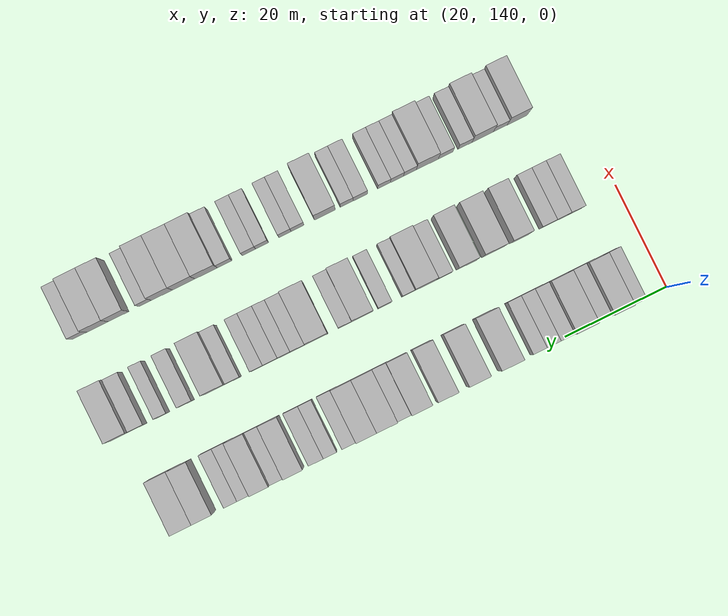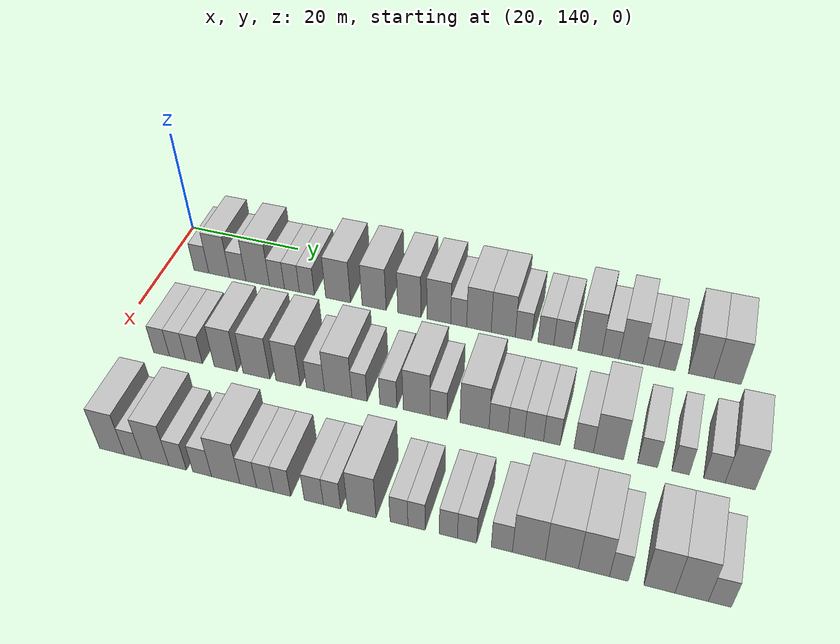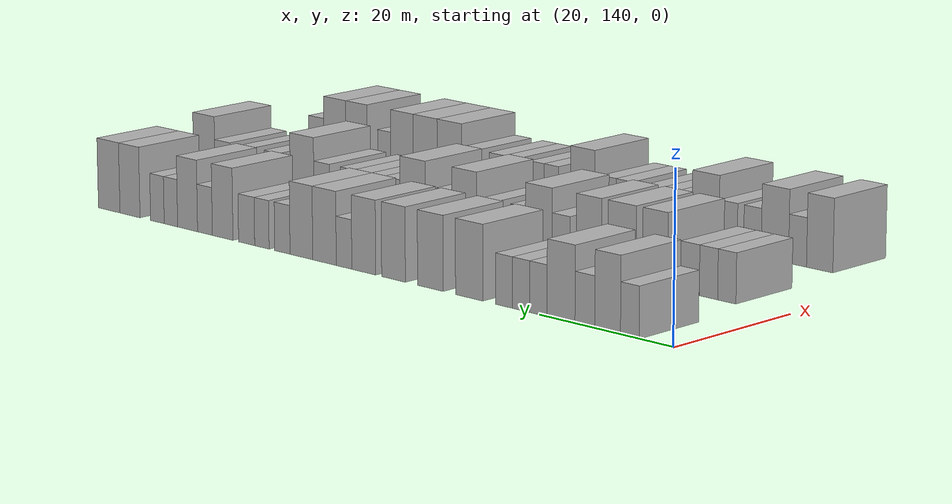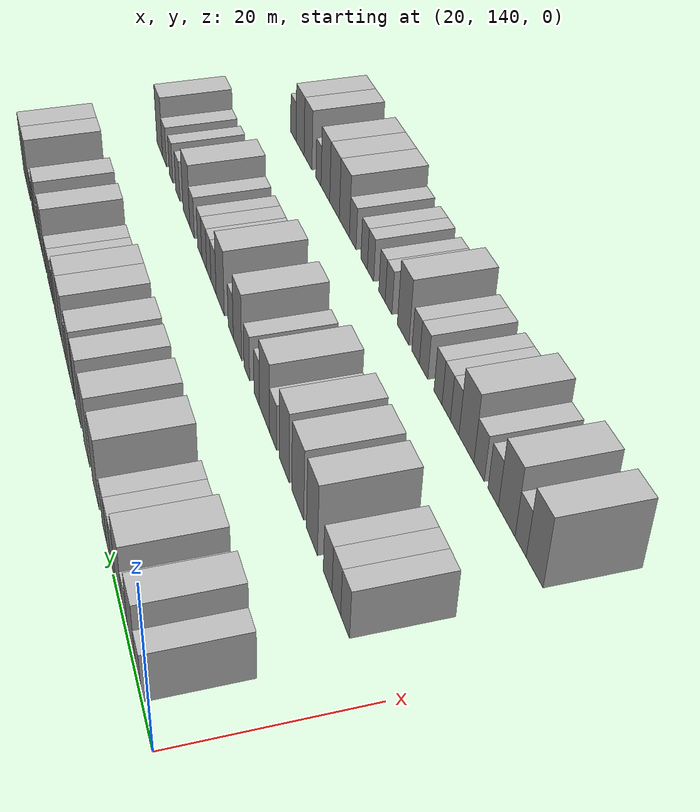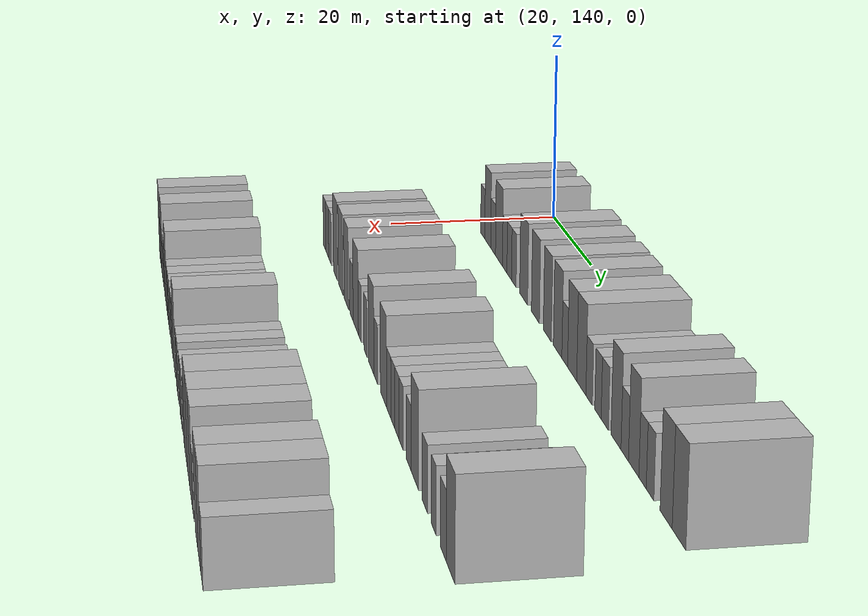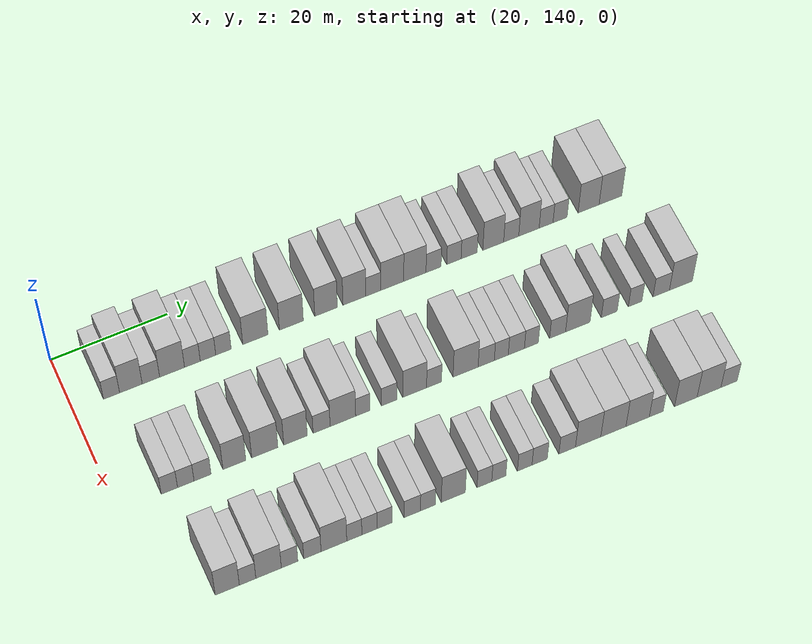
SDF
<sdf version="1.6">
 <world name="default">
  <model name="building_97">
   <static>1</static>
   <pose>25.0000 146.4397 0 0.000000 0.000000 0.000000</pose>
   <link name="link">
    <pose>0 0 3.00 0 0 0</pose>
    <collision name="collision"><geometry><box><size>10.0000 2.7392 6.0000</size></box></geometry></collision>
    <visual name="visual">
     <cast_shadows>0</cast_shadows>
     <geometry><box><size>10.0000 2.7392 6.0000</size></box></geometry>
     <material>
      <script>
       <uri>model://HANNAS_wall/materials/scripts</uri>
       <uri>model://HANNAS_wall/materials/textures</uri>
       <name>vrc/HANNAS_wall</name>
      </script>
     </material>
    </visual>
   </link>
  </model>
  <model name="building_98">
   <static>1</static>
   <pose>25.0000 149.7296 0 0.000000 0.000000 0.000000</pose>
   <link name="link">
    <pose>0 0 4.50 0 0 0</pose>
    <collision name="collision"><geometry><box><size>10.0000 3.8405 9.0000</size></box></geometry></collision>
    <visual name="visual">
     <cast_shadows>0</cast_shadows>
     <geometry><box><size>10.0000 3.8405 9.0000</size></box></geometry>
     <material>
      <script>
       <uri>model://HANNAS_wall/materials/scripts</uri>
       <uri>model://HANNAS_wall/materials/textures</uri>
       <name>vrc/HANNAS_wall</name>
      </script>
     </material>
    </visual>
   </link>
  </model>
  <model name="building_99">
   <static>1</static>
   <pose>25.0000 153.1347 0 0.000000 0.000000 0.000000</pose>
   <link name="link">
    <pose>0 0 3.00 0 0 0</pose>
    <collision name="collision"><geometry><box><size>10.0000 2.9698 6.0000</size></box></geometry></collision>
    <visual name="visual">
     <cast_shadows>0</cast_shadows>
     <geometry><box><size>10.0000 2.9698 6.0000</size></box></geometry>
     <material>
      <script>
       <uri>model://HANNAS_wall/materials/scripts</uri>
       <uri>model://HANNAS_wall/materials/textures</uri>
       <name>vrc/HANNAS_wall</name>
      </script>
     </material>
    </visual>
   </link>
  </model>
  <model name="building_100">
   <static>1</static>
   <pose>25.0000 156.7479 0 0.000000 0.000000 0.000000</pose>
   <link name="link">
    <pose>0 0 4.50 0 0 0</pose>
    <collision name="collision"><geometry><box><size>10.0000 4.2564 9.0000</size></box></geometry></collision>
    <visual name="visual">
     <cast_shadows>0</cast_shadows>
     <geometry><box><size>10.0000 4.2564 9.0000</size></box></geometry>
     <material>
      <script>
       <uri>model://HANNAS_wall/materials/scripts</uri>
       <uri>model://HANNAS_wall/materials/textures</uri>
       <name>vrc/HANNAS_wall</name>
      </script>
     </material>
    </visual>
   </link>
  </model>
  <model name="building_101">
   <static>1</static>
   <pose>25.0000 160.2203 0 0.000000 0.000000 0.000000</pose>
   <link name="link">
    <pose>0 0 3.00 0 0 0</pose>
    <collision name="collision"><geometry><box><size>10.0000 2.6884 6.0000</size></box></geometry></collision>
    <visual name="visual">
     <cast_shadows>0</cast_shadows>
     <geometry><box><size>10.0000 2.6884 6.0000</size></box></geometry>
     <material>
      <script>
       <uri>model://HANNAS_wall/materials/scripts</uri>
       <uri>model://HANNAS_wall/materials/textures</uri>
       <name>vrc/HANNAS_wall</name>
      </script>
     </material>
    </visual>
   </link>
  </model>
  <model name="building_102">
   <static>1</static>
   <pose>25.0000 162.8949 0 0.000000 0.000000 0.000000</pose>
   <link name="link">
    <pose>0 0 3.00 0 0 0</pose>
    <collision name="collision"><geometry><box><size>10.0000 2.6607 6.0000</size></box></geometry></collision>
    <visual name="visual">
     <cast_shadows>0</cast_shadows>
     <geometry><box><size>10.0000 2.6607 6.0000</size></box></geometry>
     <material>
      <script>
       <uri>model://HANNAS_wall/materials/scripts</uri>
       <uri>model://HANNAS_wall/materials/textures</uri>
       <name>vrc/HANNAS_wall</name>
      </script>
     </material>
    </visual>
   </link>
  </model>
  <model name="building_103">
   <static>1</static>
   <pose>25.0000 165.5532 0 0.000000 0.000000 0.000000</pose>
   <link name="link">
    <pose>0 0 3.00 0 0 0</pose>
    <collision name="collision"><geometry><box><size>10.0000 2.6559 6.0000</size></box></geometry></collision>
    <visual name="visual">
     <cast_shadows>0</cast_shadows>
     <geometry><box><size>10.0000 2.6559 6.0000</size></box></geometry>
     <material>
      <script>
       <uri>model://HANNAS_wall/materials/scripts</uri>
       <uri>model://HANNAS_wall/materials/textures</uri>
       <name>vrc/HANNAS_wall</name>
      </script>
     </material>
    </visual>
   </link>
  </model>
  <model name="building_104">
   <static>1</static>
   <pose>25.0000 171.0571 0 0.000000 0.000000 0.000000</pose>
   <link name="link">
    <pose>0 0 4.50 0 0 0</pose>
    <collision name="collision"><geometry><box><size>10.0000 4.3519 9.0000</size></box></geometry></collision>
    <visual name="visual">
     <cast_shadows>0</cast_shadows>
     <geometry><box><size>10.0000 4.3519 9.0000</size></box></geometry>
     <material>
      <script>
       <uri>model://HANNAS_wall/materials/scripts</uri>
       <uri>model://HANNAS_wall/materials/textures</uri>
       <name>vrc/HANNAS_wall</name>
      </script>
     </material>
    </visual>
   </link>
  </model>
  <model name="building_105">
   <static>1</static>
   <pose>25.0000 177.3102 0 0.000000 0.000000 0.000000</pose>
   <link name="link">
    <pose>0 0 4.50 0 0 0</pose>
    <collision name="collision"><geometry><box><size>10.0000 4.1542 9.0000</size></box></geometry></collision>
    <visual name="visual">
     <cast_shadows>0</cast_shadows>
     <geometry><box><size>10.0000 4.1542 9.0000</size></box></geometry>
     <material>
      <script>
       <uri>model://HANNAS_wall/materials/scripts</uri>
       <uri>model://HANNAS_wall/materials/textures</uri>
       <name>vrc/HANNAS_wall</name>
      </script>
     </material>
    </visual>
   </link>
  </model>
  <model name="building_106">
   <static>1</static>
   <pose>25.0000 183.3528 0 0.000000 0.000000 0.000000</pose>
   <link name="link">
    <pose>0 0 4.50 0 0 0</pose>
    <collision name="collision"><geometry><box><size>10.0000 3.9310 9.0000</size></box></geometry></collision>
    <visual name="visual">
     <cast_shadows>0</cast_shadows>
     <geometry><box><size>10.0000 3.9310 9.0000</size></box></geometry>
     <material>
      <script>
       <uri>model://HANNAS_wall/materials/scripts</uri>
       <uri>model://HANNAS_wall/materials/textures</uri>
       <name>vrc/HANNAS_wall</name>
      </script>
     </material>
    </visual>
   </link>
  </model>
  <model name="building_107">
   <static>1</static>
   <pose>25.0000 188.3249 0 0.000000 0.000000 0.000000</pose>
   <link name="link">
    <pose>0 0 4.50 0 0 0</pose>
    <collision name="collision"><geometry><box><size>10.0000 4.0132 9.0000</size></box></geometry></collision>
    <visual name="visual">
     <cast_shadows>0</cast_shadows>
     <geometry><box><size>10.0000 4.0132 9.0000</size></box></geometry>
     <material>
      <script>
       <uri>model://HANNAS_wall/materials/scripts</uri>
       <uri>model://HANNAS_wall/materials/textures</uri>
       <name>vrc/HANNAS_wall</name>
      </script>
     </material>
    </visual>
   </link>
  </model>
  <model name="building_108">
   <static>1</static>
   <pose>25.0000 191.6520 0 0.000000 0.000000 0.000000</pose>
   <link name="link">
    <pose>0 0 3.00 0 0 0</pose>
    <collision name="collision"><geometry><box><size>10.0000 2.6411 6.0000</size></box></geometry></collision>
    <visual name="visual">
     <cast_shadows>0</cast_shadows>
     <geometry><box><size>10.0000 2.6411 6.0000</size></box></geometry>
     <material>
      <script>
       <uri>model://HANNAS_wall/materials/scripts</uri>
       <uri>model://HANNAS_wall/materials/textures</uri>
       <name>vrc/HANNAS_wall</name>
      </script>
     </material>
    </visual>
   </link>
  </model>
  <model name="building_109">
   <static>1</static>
   <pose>25.0000 194.9926 0 0.000000 0.000000 0.000000</pose>
   <link name="link">
    <pose>0 0 4.50 0 0 0</pose>
    <collision name="collision"><geometry><box><size>10.0000 4.0400 9.0000</size></box></geometry></collision>
    <visual name="visual">
     <cast_shadows>0</cast_shadows>
     <geometry><box><size>10.0000 4.0400 9.0000</size></box></geometry>
     <material>
      <script>
       <uri>model://HANNAS_wall/materials/scripts</uri>
       <uri>model://HANNAS_wall/materials/textures</uri>
       <name>vrc/HANNAS_wall</name>
      </script>
     </material>
    </visual>
   </link>
  </model>
  <model name="building_110">
   <static>1</static>
   <pose>25.0000 198.9878 0 0.000000 0.000000 0.000000</pose>
   <link name="link">
    <pose>0 0 4.50 0 0 0</pose>
    <collision name="collision"><geometry><box><size>10.0000 3.9503 9.0000</size></box></geometry></collision>
    <visual name="visual">
     <cast_shadows>0</cast_shadows>
     <geometry><box><size>10.0000 3.9503 9.0000</size></box></geometry>
     <material>
      <script>
       <uri>model://HANNAS_wall/materials/scripts</uri>
       <uri>model://HANNAS_wall/materials/textures</uri>
       <name>vrc/HANNAS_wall</name>
      </script>
     </material>
    </visual>
   </link>
  </model>
  <model name="building_111">
   <static>1</static>
   <pose>25.0000 202.3021 0 0.000000 0.000000 0.000000</pose>
   <link name="link">
    <pose>0 0 3.00 0 0 0</pose>
    <collision name="collision"><geometry><box><size>10.0000 2.6783 6.0000</size></box></geometry></collision>
    <visual name="visual">
     <cast_shadows>0</cast_shadows>
     <geometry><box><size>10.0000 2.6783 6.0000</size></box></geometry>
     <material>
      <script>
       <uri>model://HANNAS_wall/materials/scripts</uri>
       <uri>model://HANNAS_wall/materials/textures</uri>
       <name>vrc/HANNAS_wall</name>
      </script>
     </material>
    </visual>
   </link>
  </model>
  <model name="building_112">
   <static>1</static>
   <pose>25.0000 205.9230 0 0.000000 0.000000 0.000000</pose>
   <link name="link">
    <pose>0 0 3.00 0 0 0</pose>
    <collision name="collision"><geometry><box><size>10.0000 2.5635 6.0000</size></box></geometry></collision>
    <visual name="visual">
     <cast_shadows>0</cast_shadows>
     <geometry><box><size>10.0000 2.5635 6.0000</size></box></geometry>
     <material>
      <script>
       <uri>model://HANNAS_wall/materials/scripts</uri>
       <uri>model://HANNAS_wall/materials/textures</uri>
       <name>vrc/HANNAS_wall</name>
      </script>
     </material>
    </visual>
   </link>
  </model>
  <model name="building_113">
   <static>1</static>
   <pose>25.0000 208.6433 0 0.000000 0.000000 0.000000</pose>
   <link name="link">
    <pose>0 0 3.00 0 0 0</pose>
    <collision name="collision"><geometry><box><size>10.0000 2.8770 6.0000</size></box></geometry></collision>
    <visual name="visual">
     <cast_shadows>0</cast_shadows>
     <geometry><box><size>10.0000 2.8770 6.0000</size></box></geometry>
     <material>
      <script>
       <uri>model://HANNAS_wall/materials/scripts</uri>
       <uri>model://HANNAS_wall/materials/textures</uri>
       <name>vrc/HANNAS_wall</name>
      </script>
     </material>
    </visual>
   </link>
  </model>
  <model name="building_114">
   <static>1</static>
   <pose>25.0000 212.9527 0 0.000000 0.000000 0.000000</pose>
   <link name="link">
    <pose>0 0 4.50 0 0 0</pose>
    <collision name="collision"><geometry><box><size>10.0000 3.7418 9.0000</size></box></geometry></collision>
    <visual name="visual">
     <cast_shadows>0</cast_shadows>
     <geometry><box><size>10.0000 3.7418 9.0000</size></box></geometry>
     <material>
      <script>
       <uri>model://HANNAS_wall/materials/scripts</uri>
       <uri>model://HANNAS_wall/materials/textures</uri>
       <name>vrc/HANNAS_wall</name>
      </script>
     </material>
    </visual>
   </link>
  </model>
  <model name="building_115">
   <static>1</static>
   <pose>25.0000 216.1789 0 0.000000 0.000000 0.000000</pose>
   <link name="link">
    <pose>0 0 3.00 0 0 0</pose>
    <collision name="collision"><geometry><box><size>10.0000 2.7105 6.0000</size></box></geometry></collision>
    <visual name="visual">
     <cast_shadows>0</cast_shadows>
     <geometry><box><size>10.0000 2.7105 6.0000</size></box></geometry>
     <material>
      <script>
       <uri>model://HANNAS_wall/materials/scripts</uri>
       <uri>model://HANNAS_wall/materials/textures</uri>
       <name>vrc/HANNAS_wall</name>
      </script>
     </material>
    </visual>
   </link>
  </model>
  <model name="building_116">
   <static>1</static>
   <pose>25.0000 219.3775 0 0.000000 0.000000 0.000000</pose>
   <link name="link">
    <pose>0 0 4.50 0 0 0</pose>
    <collision name="collision"><geometry><box><size>10.0000 3.6869 9.0000</size></box></geometry></collision>
    <visual name="visual">
     <cast_shadows>0</cast_shadows>
     <geometry><box><size>10.0000 3.6869 9.0000</size></box></geometry>
     <material>
      <script>
       <uri>model://HANNAS_wall/materials/scripts</uri>
       <uri>model://HANNAS_wall/materials/textures</uri>
       <name>vrc/HANNAS_wall</name>
      </script>
     </material>
    </visual>
   </link>
  </model>
  <model name="building_117">
   <static>1</static>
   <pose>25.0000 222.4710 0 0.000000 0.000000 0.000000</pose>
   <link name="link">
    <pose>0 0 3.00 0 0 0</pose>
    <collision name="collision"><geometry><box><size>10.0000 2.5001 6.0000</size></box></geometry></collision>
    <visual name="visual">
     <cast_shadows>0</cast_shadows>
     <geometry><box><size>10.0000 2.5001 6.0000</size></box></geometry>
     <material>
      <script>
       <uri>model://HANNAS_wall/materials/scripts</uri>
       <uri>model://HANNAS_wall/materials/textures</uri>
       <name>vrc/HANNAS_wall</name>
      </script>
     </material>
    </visual>
   </link>
  </model>
  <model name="building_118">
   <static>1</static>
   <pose>25.0000 224.9990 0 0.000000 0.000000 0.000000</pose>
   <link name="link">
    <pose>0 0 3.00 0 0 0</pose>
    <collision name="collision"><geometry><box><size>10.0000 2.5560 6.0000</size></box></geometry></collision>
    <visual name="visual">
     <cast_shadows>0</cast_shadows>
     <geometry><box><size>10.0000 2.5560 6.0000</size></box></geometry>
     <material>
      <script>
       <uri>model://HANNAS_wall/materials/scripts</uri>
       <uri>model://HANNAS_wall/materials/textures</uri>
       <name>vrc/HANNAS_wall</name>
      </script>
     </material>
    </visual>
   </link>
  </model>
  <model name="building_119">
   <static>1</static>
   <pose>25.0000 230.1893 0 0.000000 0.000000 0.000000</pose>
   <link name="link">
    <pose>0 0 4.50 0 0 0</pose>
    <collision name="collision"><geometry><box><size>10.0000 3.8244 9.0000</size></box></geometry></collision>
    <visual name="visual">
     <cast_shadows>0</cast_shadows>
     <geometry><box><size>10.0000 3.8244 9.0000</size></box></geometry>
     <material>
      <script>
       <uri>model://HANNAS_wall/materials/scripts</uri>
       <uri>model://HANNAS_wall/materials/textures</uri>
       <name>vrc/HANNAS_wall</name>
      </script>
     </material>
    </visual>
   </link>
  </model>
  <model name="building_120">
   <static>1</static>
   <pose>25.0000 234.1698 0 0.000000 0.000000 0.000000</pose>
   <link name="link">
    <pose>0 0 4.50 0 0 0</pose>
    <collision name="collision"><geometry><box><size>10.0000 4.1366 9.0000</size></box></geometry></collision>
    <visual name="visual">
     <cast_shadows>0</cast_shadows>
     <geometry><box><size>10.0000 4.1366 9.0000</size></box></geometry>
     <material>
      <script>
       <uri>model://HANNAS_wall/materials/scripts</uri>
       <uri>model://HANNAS_wall/materials/textures</uri>
       <name>vrc/HANNAS_wall</name>
      </script>
     </material>
    </visual>
   </link>
  </model>
  <model name="building_218">
   <static>1</static>
   <pose>44.0000 148.6196 0 0.000000 0.000000 0.000000</pose>
   <link name="link">
    <pose>0 0 3.00 0 0 0</pose>
    <collision name="collision"><geometry><box><size>10.0000 2.7322 6.0000</size></box></geometry></collision>
    <visual name="visual">
     <cast_shadows>0</cast_shadows>
     <geometry><box><size>10.0000 2.7322 6.0000</size></box></geometry>
     <material>
      <script>
       <uri>model://HANNAS_wall/materials/scripts</uri>
       <uri>model://HANNAS_wall/materials/textures</uri>
       <name>vrc/HANNAS_wall</name>
      </script>
     </material>
    </visual>
   </link>
  </model>
  <model name="building_219">
   <static>1</static>
   <pose>44.0000 151.3660 0 0.000000 0.000000 0.000000</pose>
   <link name="link">
    <pose>0 0 3.00 0 0 0</pose>
    <collision name="collision"><geometry><box><size>10.0000 2.7606 6.0000</size></box></geometry></collision>
    <visual name="visual">
     <cast_shadows>0</cast_shadows>
     <geometry><box><size>10.0000 2.7606 6.0000</size></box></geometry>
     <material>
      <script>
       <uri>model://HANNAS_wall/materials/scripts</uri>
       <uri>model://HANNAS_wall/materials/textures</uri>
       <name>vrc/HANNAS_wall</name>
      </script>
     </material>
    </visual>
   </link>
  </model>
  <model name="building_220">
   <static>1</static>
   <pose>44.0000 154.1732 0 0.000000 0.000000 0.000000</pose>
   <link name="link">
    <pose>0 0 3.00 0 0 0</pose>
    <collision name="collision"><geometry><box><size>10.0000 2.8539 6.0000</size></box></geometry></collision>
    <visual name="visual">
     <cast_shadows>0</cast_shadows>
     <geometry><box><size>10.0000 2.8539 6.0000</size></box></geometry>
     <material>
      <script>
       <uri>model://HANNAS_wall/materials/scripts</uri>
       <uri>model://HANNAS_wall/materials/textures</uri>
       <name>vrc/HANNAS_wall</name>
      </script>
     </material>
    </visual>
   </link>
  </model>
  <model name="building_221">
   <static>1</static>
   <pose>44.0000 159.5273 0 0.000000 0.000000 0.000000</pose>
   <link name="link">
    <pose>0 0 4.50 0 0 0</pose>
    <collision name="collision"><geometry><box><size>10.0000 3.8543 9.0000</size></box></geometry></collision>
    <visual name="visual">
     <cast_shadows>0</cast_shadows>
     <geometry><box><size>10.0000 3.8543 9.0000</size></box></geometry>
     <material>
      <script>
       <uri>model://HANNAS_wall/materials/scripts</uri>
       <uri>model://HANNAS_wall/materials/textures</uri>
       <name>vrc/HANNAS_wall</name>
      </script>
     </material>
    </visual>
   </link>
  </model>
  <model name="building_222">
   <static>1</static>
   <pose>44.0000 164.6703 0 0.000000 0.000000 0.000000</pose>
   <link name="link">
    <pose>0 0 4.50 0 0 0</pose>
    <collision name="collision"><geometry><box><size>10.0000 4.4319 9.0000</size></box></geometry></collision>
    <visual name="visual">
     <cast_shadows>0</cast_shadows>
     <geometry><box><size>10.0000 4.4319 9.0000</size></box></geometry>
     <material>
      <script>
       <uri>model://HANNAS_wall/materials/scripts</uri>
       <uri>model://HANNAS_wall/materials/textures</uri>
       <name>vrc/HANNAS_wall</name>
      </script>
     </material>
    </visual>
   </link>
  </model>
  <model name="building_223">
   <static>1</static>
   <pose>44.0000 169.8847 0 0.000000 0.000000 0.000000</pose>
   <link name="link">
    <pose>0 0 4.50 0 0 0</pose>
    <collision name="collision"><geometry><box><size>10.0000 3.9969 9.0000</size></box></geometry></collision>
    <visual name="visual">
     <cast_shadows>0</cast_shadows>
     <geometry><box><size>10.0000 3.9969 9.0000</size></box></geometry>
     <material>
      <script>
       <uri>model://HANNAS_wall/materials/scripts</uri>
       <uri>model://HANNAS_wall/materials/textures</uri>
       <name>vrc/HANNAS_wall</name>
      </script>
     </material>
    </visual>
   </link>
  </model>
  <model name="building_224">
   <static>1</static>
   <pose>44.0000 174.3348 0 0.000000 0.000000 0.000000</pose>
   <link name="link">
    <pose>0 0 3.00 0 0 0</pose>
    <collision name="collision"><geometry><box><size>10.0000 2.9032 6.0000</size></box></geometry></collision>
    <visual name="visual">
     <cast_shadows>0</cast_shadows>
     <geometry><box><size>10.0000 2.9032 6.0000</size></box></geometry>
     <material>
      <script>
       <uri>model://HANNAS_wall/materials/scripts</uri>
       <uri>model://HANNAS_wall/materials/textures</uri>
       <name>vrc/HANNAS_wall</name>
      </script>
     </material>
    </visual>
   </link>
  </model>
  <model name="building_225">
   <static>1</static>
   <pose>44.0000 177.9790 0 0.000000 0.000000 0.000000</pose>
   <link name="link">
    <pose>0 0 4.50 0 0 0</pose>
    <collision name="collision"><geometry><box><size>10.0000 4.3853 9.0000</size></box></geometry></collision>
    <visual name="visual">
     <cast_shadows>0</cast_shadows>
     <geometry><box><size>10.0000 4.3853 9.0000</size></box></geometry>
     <material>
      <script>
       <uri>model://HANNAS_wall/materials/scripts</uri>
       <uri>model://HANNAS_wall/materials/textures</uri>
       <name>vrc/HANNAS_wall</name>
      </script>
     </material>
    </visual>
   </link>
  </model>
  <model name="building_226">
   <static>1</static>
   <pose>44.0000 181.3845 0 0.000000 0.000000 0.000000</pose>
   <link name="link">
    <pose>0 0 3.00 0 0 0</pose>
    <collision name="collision"><geometry><box><size>10.0000 2.4257 6.0000</size></box></geometry></collision>
    <visual name="visual">
     <cast_shadows>0</cast_shadows>
     <geometry><box><size>10.0000 2.4257 6.0000</size></box></geometry>
     <material>
      <script>
       <uri>model://HANNAS_wall/materials/scripts</uri>
       <uri>model://HANNAS_wall/materials/textures</uri>
       <name>vrc/HANNAS_wall</name>
      </script>
     </material>
    </visual>
   </link>
  </model>
  <model name="building_227">
   <static>1</static>
   <pose>44.0000 185.9343 0 0.000000 0.000000 0.000000</pose>
   <link name="link">
    <pose>0 0 3.00 0 0 0</pose>
    <collision name="collision"><geometry><box><size>10.0000 2.6739 6.0000</size></box></geometry></collision>
    <visual name="visual">
     <cast_shadows>0</cast_shadows>
     <geometry><box><size>10.0000 2.6739 6.0000</size></box></geometry>
     <material>
      <script>
       <uri>model://HANNAS_wall/materials/scripts</uri>
       <uri>model://HANNAS_wall/materials/textures</uri>
       <name>vrc/HANNAS_wall</name>
      </script>
     </material>
    </visual>
   </link>
  </model>
  <model name="building_228">
   <static>1</static>
   <pose>44.0000 190.3414 0 0.000000 0.000000 0.000000</pose>
   <link name="link">
    <pose>0 0 4.50 0 0 0</pose>
    <collision name="collision"><geometry><box><size>10.0000 4.1401 9.0000</size></box></geometry></collision>
    <visual name="visual">
     <cast_shadows>0</cast_shadows>
     <geometry><box><size>10.0000 4.1401 9.0000</size></box></geometry>
     <material>
      <script>
       <uri>model://HANNAS_wall/materials/scripts</uri>
       <uri>model://HANNAS_wall/materials/textures</uri>
       <name>vrc/HANNAS_wall</name>
      </script>
     </material>
    </visual>
   </link>
  </model>
  <model name="building_229">
   <static>1</static>
   <pose>44.0000 193.7143 0 0.000000 0.000000 0.000000</pose>
   <link name="link">
    <pose>0 0 3.00 0 0 0</pose>
    <collision name="collision"><geometry><box><size>10.0000 2.6059 6.0000</size></box></geometry></collision>
    <visual name="visual">
     <cast_shadows>0</cast_shadows>
     <geometry><box><size>10.0000 2.6059 6.0000</size></box></geometry>
     <material>
      <script>
       <uri>model://HANNAS_wall/materials/scripts</uri>
       <uri>model://HANNAS_wall/materials/textures</uri>
       <name>vrc/HANNAS_wall</name>
      </script>
     </material>
    </visual>
   </link>
  </model>
  <model name="building_230">
   <static>1</static>
   <pose>44.0000 199.2094 0 0.000000 0.000000 0.000000</pose>
   <link name="link">
    <pose>0 0 4.50 0 0 0</pose>
    <collision name="collision"><geometry><box><size>10.0000 4.3842 9.0000</size></box></geometry></collision>
    <visual name="visual">
     <cast_shadows>0</cast_shadows>
     <geometry><box><size>10.0000 4.3842 9.0000</size></box></geometry>
     <material>
      <script>
       <uri>model://HANNAS_wall/materials/scripts</uri>
       <uri>model://HANNAS_wall/materials/textures</uri>
       <name>vrc/HANNAS_wall</name>
      </script>
     </material>
    </visual>
   </link>
  </model>
  <model name="building_231">
   <static>1</static>
   <pose>44.0000 202.8194 0 0.000000 0.000000 0.000000</pose>
   <link name="link">
    <pose>0 0 3.00 0 0 0</pose>
    <collision name="collision"><geometry><box><size>10.0000 2.8358 6.0000</size></box></geometry></collision>
    <visual name="visual">
     <cast_shadows>0</cast_shadows>
     <geometry><box><size>10.0000 2.8358 6.0000</size></box></geometry>
     <material>
      <script>
       <uri>model://HANNAS_wall/materials/scripts</uri>
       <uri>model://HANNAS_wall/materials/textures</uri>
       <name>vrc/HANNAS_wall</name>
      </script>
     </material>
    </visual>
   </link>
  </model>
  <model name="building_232">
   <static>1</static>
   <pose>44.0000 205.4664 0 0.000000 0.000000 0.000000</pose>
   <link name="link">
    <pose>0 0 3.00 0 0 0</pose>
    <collision name="collision"><geometry><box><size>10.0000 2.4582 6.0000</size></box></geometry></collision>
    <visual name="visual">
     <cast_shadows>0</cast_shadows>
     <geometry><box><size>10.0000 2.4582 6.0000</size></box></geometry>
     <material>
      <script>
       <uri>model://HANNAS_wall/materials/scripts</uri>
       <uri>model://HANNAS_wall/materials/textures</uri>
       <name>vrc/HANNAS_wall</name>
      </script>
     </material>
    </visual>
   </link>
  </model>
  <model name="building_233">
   <static>1</static>
   <pose>44.0000 208.1112 0 0.000000 0.000000 0.000000</pose>
   <link name="link">
    <pose>0 0 3.00 0 0 0</pose>
    <collision name="collision"><geometry><box><size>10.0000 2.8314 6.0000</size></box></geometry></collision>
    <visual name="visual">
     <cast_shadows>0</cast_shadows>
     <geometry><box><size>10.0000 2.8314 6.0000</size></box></geometry>
     <material>
      <script>
       <uri>model://HANNAS_wall/materials/scripts</uri>
       <uri>model://HANNAS_wall/materials/textures</uri>
       <name>vrc/HANNAS_wall</name>
      </script>
     </material>
    </visual>
   </link>
  </model>
  <model name="building_234">
   <static>1</static>
   <pose>44.0000 210.7531 0 0.000000 0.000000 0.000000</pose>
   <link name="link">
    <pose>0 0 3.00 0 0 0</pose>
    <collision name="collision"><geometry><box><size>10.0000 2.4525 6.0000</size></box></geometry></collision>
    <visual name="visual">
     <cast_shadows>0</cast_shadows>
     <geometry><box><size>10.0000 2.4525 6.0000</size></box></geometry>
     <material>
      <script>
       <uri>model://HANNAS_wall/materials/scripts</uri>
       <uri>model://HANNAS_wall/materials/textures</uri>
       <name>vrc/HANNAS_wall</name>
      </script>
     </material>
    </visual>
   </link>
  </model>
  <model name="building_235">
   <static>1</static>
   <pose>44.0000 215.3943 0 0.000000 0.000000 0.000000</pose>
   <link name="link">
    <pose>0 0 3.00 0 0 0</pose>
    <collision name="collision"><geometry><box><size>10.0000 2.8300 6.0000</size></box></geometry></collision>
    <visual name="visual">
     <cast_shadows>0</cast_shadows>
     <geometry><box><size>10.0000 2.8300 6.0000</size></box></geometry>
     <material>
      <script>
       <uri>model://HANNAS_wall/materials/scripts</uri>
       <uri>model://HANNAS_wall/materials/textures</uri>
       <name>vrc/HANNAS_wall</name>
      </script>
     </material>
    </visual>
   </link>
  </model>
  <model name="building_236">
   <static>1</static>
   <pose>44.0000 218.9858 0 0.000000 0.000000 0.000000</pose>
   <link name="link">
    <pose>0 0 4.50 0 0 0</pose>
    <collision name="collision"><geometry><box><size>10.0000 4.3530 9.0000</size></box></geometry></collision>
    <visual name="visual">
     <cast_shadows>0</cast_shadows>
     <geometry><box><size>10.0000 4.3530 9.0000</size></box></geometry>
     <material>
      <script>
       <uri>model://HANNAS_wall/materials/scripts</uri>
       <uri>model://HANNAS_wall/materials/textures</uri>
       <name>vrc/HANNAS_wall</name>
      </script>
     </material>
    </visual>
   </link>
  </model>
  <model name="building_237">
   <static>1</static>
   <pose>44.0000 224.5813 0 0.000000 0.000000 0.000000</pose>
   <link name="link">
    <pose>0 0 3.00 0 0 0</pose>
    <collision name="collision"><geometry><box><size>10.0000 2.8380 6.0000</size></box></geometry></collision>
    <visual name="visual">
     <cast_shadows>0</cast_shadows>
     <geometry><box><size>10.0000 2.8380 6.0000</size></box></geometry>
     <material>
      <script>
       <uri>model://HANNAS_wall/materials/scripts</uri>
       <uri>model://HANNAS_wall/materials/textures</uri>
       <name>vrc/HANNAS_wall</name>
      </script>
     </material>
    </visual>
   </link>
  </model>
  <model name="building_238">
   <static>1</static>
   <pose>44.0000 229.2187 0 0.000000 0.000000 0.000000</pose>
   <link name="link">
    <pose>0 0 3.00 0 0 0</pose>
    <collision name="collision"><geometry><box><size>10.0000 2.4369 6.0000</size></box></geometry></collision>
    <visual name="visual">
     <cast_shadows>0</cast_shadows>
     <geometry><box><size>10.0000 2.4369 6.0000</size></box></geometry>
     <material>
      <script>
       <uri>model://HANNAS_wall/materials/scripts</uri>
       <uri>model://HANNAS_wall/materials/textures</uri>
       <name>vrc/HANNAS_wall</name>
      </script>
     </material>
    </visual>
   </link>
  </model>
  <model name="building_239">
   <static>1</static>
   <pose>44.0000 233.9133 0 0.000000 0.000000 0.000000</pose>
   <link name="link">
    <pose>0 0 3.00 0 0 0</pose>
    <collision name="collision"><geometry><box><size>10.0000 2.9522 6.0000</size></box></geometry></collision>
    <visual name="visual">
     <cast_shadows>0</cast_shadows>
     <geometry><box><size>10.0000 2.9522 6.0000</size></box></geometry>
     <material>
      <script>
       <uri>model://HANNAS_wall/materials/scripts</uri>
       <uri>model://HANNAS_wall/materials/textures</uri>
       <name>vrc/HANNAS_wall</name>
      </script>
     </material>
    </visual>
   </link>
  </model>
  <model name="building_240">
   <static>1</static>
   <pose>44.0000 237.4604 0 0.000000 0.000000 0.000000</pose>
   <link name="link">
    <pose>0 0 4.50 0 0 0</pose>
    <collision name="collision"><geometry><box><size>10.0000 4.1422 9.0000</size></box></geometry></collision>
    <visual name="visual">
     <cast_shadows>0</cast_shadows>
     <geometry><box><size>10.0000 4.1422 9.0000</size></box></geometry>
     <material>
      <script>
       <uri>model://HANNAS_wall/materials/scripts</uri>
       <uri>model://HANNAS_wall/materials/textures</uri>
       <name>vrc/HANNAS_wall</name>
      </script>
     </material>
    </visual>
   </link>
  </model>
  <model name="building_334">
   <static>1</static>
   <pose>63.0000 150.4438 0 0.000000 0.000000 0.000000</pose>
   <link name="link">
    <pose>0 0 4.50 0 0 0</pose>
    <collision name="collision"><geometry><box><size>10.0000 3.9786 9.0000</size></box></geometry></collision>
    <visual name="visual">
     <cast_shadows>0</cast_shadows>
     <geometry><box><size>10.0000 3.9786 9.0000</size></box></geometry>
     <material>
      <script>
       <uri>model://HANNAS_wall/materials/scripts</uri>
       <uri>model://HANNAS_wall/materials/textures</uri>
       <name>vrc/HANNAS_wall</name>
      </script>
     </material>
    </visual>
   </link>
  </model>
  <model name="building_335">
   <static>1</static>
   <pose>63.0000 153.7990 0 0.000000 0.000000 0.000000</pose>
   <link name="link">
    <pose>0 0 3.00 0 0 0</pose>
    <collision name="collision"><geometry><box><size>10.0000 2.7318 6.0000</size></box></geometry></collision>
    <visual name="visual">
     <cast_shadows>0</cast_shadows>
     <geometry><box><size>10.0000 2.7318 6.0000</size></box></geometry>
     <material>
      <script>
       <uri>model://HANNAS_wall/materials/scripts</uri>
       <uri>model://HANNAS_wall/materials/textures</uri>
       <name>vrc/HANNAS_wall</name>
      </script>
     </material>
    </visual>
   </link>
  </model>
  <model name="building_336">
   <static>1</static>
   <pose>63.0000 157.2756 0 0.000000 0.000000 0.000000</pose>
   <link name="link">
    <pose>0 0 4.50 0 0 0</pose>
    <collision name="collision"><geometry><box><size>10.0000 4.2215 9.0000</size></box></geometry></collision>
    <visual name="visual">
     <cast_shadows>0</cast_shadows>
     <geometry><box><size>10.0000 4.2215 9.0000</size></box></geometry>
     <material>
      <script>
       <uri>model://HANNAS_wall/materials/scripts</uri>
       <uri>model://HANNAS_wall/materials/textures</uri>
       <name>vrc/HANNAS_wall</name>
      </script>
     </material>
    </visual>
   </link>
  </model>
  <model name="building_337">
   <static>1</static>
   <pose>63.0000 160.7575 0 0.000000 0.000000 0.000000</pose>
   <link name="link">
    <pose>0 0 3.00 0 0 0</pose>
    <collision name="collision"><geometry><box><size>10.0000 2.7422 6.0000</size></box></geometry></collision>
    <visual name="visual">
     <cast_shadows>0</cast_shadows>
     <geometry><box><size>10.0000 2.7422 6.0000</size></box></geometry>
     <material>
      <script>
       <uri>model://HANNAS_wall/materials/scripts</uri>
       <uri>model://HANNAS_wall/materials/textures</uri>
       <name>vrc/HANNAS_wall</name>
      </script>
     </material>
    </visual>
   </link>
  </model>
  <model name="building_338">
   <static>1</static>
   <pose>63.0000 164.5646 0 0.000000 0.000000 0.000000</pose>
   <link name="link">
    <pose>0 0 3.00 0 0 0</pose>
    <collision name="collision"><geometry><box><size>10.0000 2.8721 6.0000</size></box></geometry></collision>
    <visual name="visual">
     <cast_shadows>0</cast_shadows>
     <geometry><box><size>10.0000 2.8721 6.0000</size></box></geometry>
     <material>
      <script>
       <uri>model://HANNAS_wall/materials/scripts</uri>
       <uri>model://HANNAS_wall/materials/textures</uri>
       <name>vrc/HANNAS_wall</name>
      </script>
     </material>
    </visual>
   </link>
  </model>
  <model name="building_339">
   <static>1</static>
   <pose>63.0000 168.1532 0 0.000000 0.000000 0.000000</pose>
   <link name="link">
    <pose>0 0 4.50 0 0 0</pose>
    <collision name="collision"><geometry><box><size>10.0000 4.3051 9.0000</size></box></geometry></collision>
    <visual name="visual">
     <cast_shadows>0</cast_shadows>
     <geometry><box><size>10.0000 4.3051 9.0000</size></box></geometry>
     <material>
      <script>
       <uri>model://HANNAS_wall/materials/scripts</uri>
       <uri>model://HANNAS_wall/materials/textures</uri>
       <name>vrc/HANNAS_wall</name>
      </script>
     </material>
    </visual>
   </link>
  </model>
  <model name="building_340">
   <static>1</static>
   <pose>63.0000 171.5740 0 0.000000 0.000000 0.000000</pose>
   <link name="link">
    <pose>0 0 3.00 0 0 0</pose>
    <collision name="collision"><geometry><box><size>10.0000 2.5365 6.0000</size></box></geometry></collision>
    <visual name="visual">
     <cast_shadows>0</cast_shadows>
     <geometry><box><size>10.0000 2.5365 6.0000</size></box></geometry>
     <material>
      <script>
       <uri>model://HANNAS_wall/materials/scripts</uri>
       <uri>model://HANNAS_wall/materials/textures</uri>
       <name>vrc/HANNAS_wall</name>
      </script>
     </material>
    </visual>
   </link>
  </model>
  <model name="building_341">
   <static>1</static>
   <pose>63.0000 174.1327 0 0.000000 0.000000 0.000000</pose>
   <link name="link">
    <pose>0 0 3.00 0 0 0</pose>
    <collision name="collision"><geometry><box><size>10.0000 2.5808 6.0000</size></box></geometry></collision>
    <visual name="visual">
     <cast_shadows>0</cast_shadows>
     <geometry><box><size>10.0000 2.5808 6.0000</size></box></geometry>
     <material>
      <script>
       <uri>model://HANNAS_wall/materials/scripts</uri>
       <uri>model://HANNAS_wall/materials/textures</uri>
       <name>vrc/HANNAS_wall</name>
      </script>
     </material>
    </visual>
   </link>
  </model>
  <model name="building_342">
   <static>1</static>
   <pose>63.0000 176.6756 0 0.000000 0.000000 0.000000</pose>
   <link name="link">
    <pose>0 0 3.00 0 0 0</pose>
    <collision name="collision"><geometry><box><size>10.0000 2.5051 6.0000</size></box></geometry></collision>
    <visual name="visual">
     <cast_shadows>0</cast_shadows>
     <geometry><box><size>10.0000 2.5051 6.0000</size></box></geometry>
     <material>
      <script>
       <uri>model://HANNAS_wall/materials/scripts</uri>
       <uri>model://HANNAS_wall/materials/textures</uri>
       <name>vrc/HANNAS_wall</name>
      </script>
     </material>
    </visual>
   </link>
  </model>
  <model name="building_343">
   <static>1</static>
   <pose>63.0000 181.3301 0 0.000000 0.000000 0.000000</pose>
   <link name="link">
    <pose>0 0 3.00 0 0 0</pose>
    <collision name="collision"><geometry><box><size>10.0000 2.8038 6.0000</size></box></geometry></collision>
    <visual name="visual">
     <cast_shadows>0</cast_shadows>
     <geometry><box><size>10.0000 2.8038 6.0000</size></box></geometry>
     <material>
      <script>
       <uri>model://HANNAS_wall/materials/scripts</uri>
       <uri>model://HANNAS_wall/materials/textures</uri>
       <name>vrc/HANNAS_wall</name>
      </script>
     </material>
    </visual>
   </link>
  </model>
  <model name="building_344">
   <static>1</static>
   <pose>63.0000 183.9959 0 0.000000 0.000000 0.000000</pose>
   <link name="link">
    <pose>0 0 3.00 0 0 0</pose>
    <collision name="collision"><geometry><box><size>10.0000 2.5277 6.0000</size></box></geometry></collision>
    <visual name="visual">
     <cast_shadows>0</cast_shadows>
     <geometry><box><size>10.0000 2.5277 6.0000</size></box></geometry>
     <material>
      <script>
       <uri>model://HANNAS_wall/materials/scripts</uri>
       <uri>model://HANNAS_wall/materials/textures</uri>
       <name>vrc/HANNAS_wall</name>
      </script>
     </material>
    </visual>
   </link>
  </model>
  <model name="building_345">
   <static>1</static>
   <pose>63.0000 188.3091 0 0.000000 0.000000 0.000000</pose>
   <link name="link">
    <pose>0 0 4.50 0 0 0</pose>
    <collision name="collision"><geometry><box><size>10.0000 4.0987 9.0000</size></box></geometry></collision>
    <visual name="visual">
     <cast_shadows>0</cast_shadows>
     <geometry><box><size>10.0000 4.0987 9.0000</size></box></geometry>
     <material>
      <script>
       <uri>model://HANNAS_wall/materials/scripts</uri>
       <uri>model://HANNAS_wall/materials/textures</uri>
       <name>vrc/HANNAS_wall</name>
      </script>
     </material>
    </visual>
   </link>
  </model>
  <model name="building_346">
   <static>1</static>
   <pose>63.0000 193.6199 0 0.000000 0.000000 0.000000</pose>
   <link name="link">
    <pose>0 0 3.00 0 0 0</pose>
    <collision name="collision"><geometry><box><size>10.0000 2.5230 6.0000</size></box></geometry></collision>
    <visual name="visual">
     <cast_shadows>0</cast_shadows>
     <geometry><box><size>10.0000 2.5230 6.0000</size></box></geometry>
     <material>
      <script>
       <uri>model://HANNAS_wall/materials/scripts</uri>
       <uri>model://HANNAS_wall/materials/textures</uri>
       <name>vrc/HANNAS_wall</name>
      </script>
     </material>
    </visual>
   </link>
  </model>
  <model name="building_347">
   <static>1</static>
   <pose>63.0000 196.0917 0 0.000000 0.000000 0.000000</pose>
   <link name="link">
    <pose>0 0 3.00 0 0 0</pose>
    <collision name="collision"><geometry><box><size>10.0000 2.4206 6.0000</size></box></geometry></collision>
    <visual name="visual">
     <cast_shadows>0</cast_shadows>
     <geometry><box><size>10.0000 2.4206 6.0000</size></box></geometry>
     <material>
      <script>
       <uri>model://HANNAS_wall/materials/scripts</uri>
       <uri>model://HANNAS_wall/materials/textures</uri>
       <name>vrc/HANNAS_wall</name>
      </script>
     </material>
    </visual>
   </link>
  </model>
  <model name="building_348">
   <static>1</static>
   <pose>63.0000 200.5550 0 0.000000 0.000000 0.000000</pose>
   <link name="link">
    <pose>0 0 3.00 0 0 0</pose>
    <collision name="collision"><geometry><box><size>10.0000 2.5060 6.0000</size></box></geometry></collision>
    <visual name="visual">
     <cast_shadows>0</cast_shadows>
     <geometry><box><size>10.0000 2.5060 6.0000</size></box></geometry>
     <material>
      <script>
       <uri>model://HANNAS_wall/materials/scripts</uri>
       <uri>model://HANNAS_wall/materials/textures</uri>
       <name>vrc/HANNAS_wall</name>
      </script>
     </material>
    </visual>
   </link>
  </model>
  <model name="building_349">
   <static>1</static>
   <pose>63.0000 203.1297 0 0.000000 0.000000 0.000000</pose>
   <link name="link">
    <pose>0 0 3.00 0 0 0</pose>
    <collision name="collision"><geometry><box><size>10.0000 2.6435 6.0000</size></box></geometry></collision>
    <visual name="visual">
     <cast_shadows>0</cast_shadows>
     <geometry><box><size>10.0000 2.6435 6.0000</size></box></geometry>
     <material>
      <script>
       <uri>model://HANNAS_wall/materials/scripts</uri>
       <uri>model://HANNAS_wall/materials/textures</uri>
       <name>vrc/HANNAS_wall</name>
      </script>
     </material>
    </visual>
   </link>
  </model>
  <model name="building_350">
   <static>1</static>
   <pose>63.0000 207.8906 0 0.000000 0.000000 0.000000</pose>
   <link name="link">
    <pose>0 0 3.00 0 0 0</pose>
    <collision name="collision"><geometry><box><size>10.0000 2.8781 6.0000</size></box></geometry></collision>
    <visual name="visual">
     <cast_shadows>0</cast_shadows>
     <geometry><box><size>10.0000 2.8781 6.0000</size></box></geometry>
     <material>
      <script>
       <uri>model://HANNAS_wall/materials/scripts</uri>
       <uri>model://HANNAS_wall/materials/textures</uri>
       <name>vrc/HANNAS_wall</name>
      </script>
     </material>
    </visual>
   </link>
  </model>
  <model name="building_351">
   <static>1</static>
   <pose>63.0000 211.5336 0 0.000000 0.000000 0.000000</pose>
   <link name="link">
    <pose>0 0 4.50 0 0 0</pose>
    <collision name="collision"><geometry><box><size>10.0000 4.4079 9.0000</size></box></geometry></collision>
    <visual name="visual">
     <cast_shadows>0</cast_shadows>
     <geometry><box><size>10.0000 4.4079 9.0000</size></box></geometry>
     <material>
      <script>
       <uri>model://HANNAS_wall/materials/scripts</uri>
       <uri>model://HANNAS_wall/materials/textures</uri>
       <name>vrc/HANNAS_wall</name>
      </script>
     </material>
    </visual>
   </link>
  </model>
  <model name="building_352">
   <static>1</static>
   <pose>63.0000 215.9398 0 0.000000 0.000000 0.000000</pose>
   <link name="link">
    <pose>0 0 4.50 0 0 0</pose>
    <collision name="collision"><geometry><box><size>10.0000 4.4044 9.0000</size></box></geometry></collision>
    <visual name="visual">
     <cast_shadows>0</cast_shadows>
     <geometry><box><size>10.0000 4.4044 9.0000</size></box></geometry>
     <material>
      <script>
       <uri>model://HANNAS_wall/materials/scripts</uri>
       <uri>model://HANNAS_wall/materials/textures</uri>
       <name>vrc/HANNAS_wall</name>
      </script>
     </material>
    </visual>
   </link>
  </model>
  <model name="building_353">
   <static>1</static>
   <pose>63.0000 220.1891 0 0.000000 0.000000 0.000000</pose>
   <link name="link">
    <pose>0 0 4.50 0 0 0</pose>
    <collision name="collision"><geometry><box><size>10.0000 4.0942 9.0000</size></box></geometry></collision>
    <visual name="visual">
     <cast_shadows>0</cast_shadows>
     <geometry><box><size>10.0000 4.0942 9.0000</size></box></geometry>
     <material>
      <script>
       <uri>model://HANNAS_wall/materials/scripts</uri>
       <uri>model://HANNAS_wall/materials/textures</uri>
       <name>vrc/HANNAS_wall</name>
      </script>
     </material>
    </visual>
   </link>
  </model>
  <model name="building_354">
   <static>1</static>
   <pose>63.0000 223.4594 0 0.000000 0.000000 0.000000</pose>
   <link name="link">
    <pose>0 0 3.00 0 0 0</pose>
    <collision name="collision"><geometry><box><size>10.0000 2.4464 6.0000</size></box></geometry></collision>
    <visual name="visual">
     <cast_shadows>0</cast_shadows>
     <geometry><box><size>10.0000 2.4464 6.0000</size></box></geometry>
     <material>
      <script>
       <uri>model://HANNAS_wall/materials/scripts</uri>
       <uri>model://HANNAS_wall/materials/textures</uri>
       <name>vrc/HANNAS_wall</name>
      </script>
     </material>
    </visual>
   </link>
  </model>
  <model name="building_355">
   <static>1</static>
   <pose>63.0000 228.6729 0 0.000000 0.000000 0.000000</pose>
   <link name="link">
    <pose>0 0 4.50 0 0 0</pose>
    <collision name="collision"><geometry><box><size>10.0000 3.9806 9.0000</size></box></geometry></collision>
    <visual name="visual">
     <cast_shadows>0</cast_shadows>
     <geometry><box><size>10.0000 3.9806 9.0000</size></box></geometry>
     <material>
      <script>
       <uri>model://HANNAS_wall/materials/scripts</uri>
       <uri>model://HANNAS_wall/materials/textures</uri>
       <name>vrc/HANNAS_wall</name>
      </script>
     </material>
    </visual>
   </link>
  </model>
  <model name="building_356">
   <static>1</static>
   <pose>63.0000 232.7712 0 0.000000 0.000000 0.000000</pose>
   <link name="link">
    <pose>0 0 4.50 0 0 0</pose>
    <collision name="collision"><geometry><box><size>10.0000 4.2159 9.0000</size></box></geometry></collision>
    <visual name="visual">
     <cast_shadows>0</cast_shadows>
     <geometry><box><size>10.0000 4.2159 9.0000</size></box></geometry>
     <material>
      <script>
       <uri>model://HANNAS_wall/materials/scripts</uri>
       <uri>model://HANNAS_wall/materials/textures</uri>
       <name>vrc/HANNAS_wall</name>
      </script>
     </material>
    </visual>
   </link>
  </model>
  <model name="building_357">
   <static>1</static>
   <pose>63.0000 236.3253 0 0.000000 0.000000 0.000000</pose>
   <link name="link">
    <pose>0 0 3.00 0 0 0</pose>
    <collision name="collision"><geometry><box><size>10.0000 2.8924 6.0000</size></box></geometry></collision>
    <visual name="visual">
     <cast_shadows>0</cast_shadows>
     <geometry><box><size>10.0000 2.8924 6.0000</size></box></geometry>
     <material>
      <script>
       <uri>model://HANNAS_wall/materials/scripts</uri>
       <uri>model://HANNAS_wall/materials/textures</uri>
       <name>vrc/HANNAS_wall</name>
      </script>
     </material>
    </visual>
   </link>
  </model>
 </world>
</sdf>
